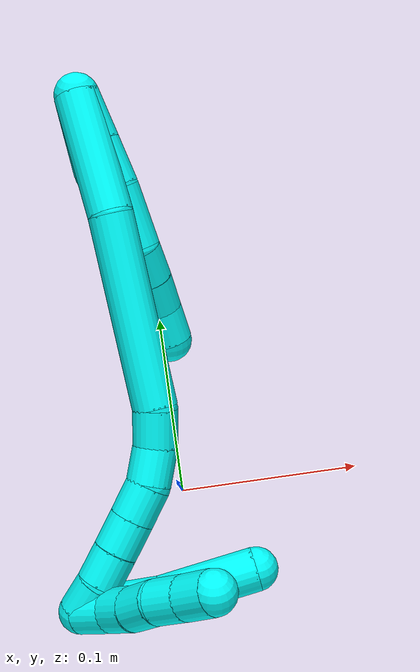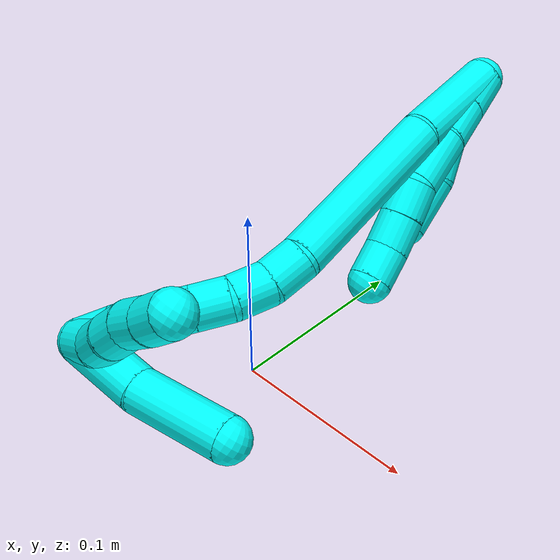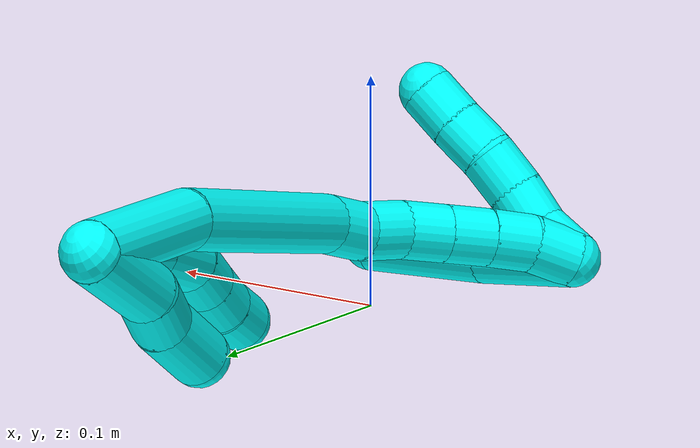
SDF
<sdf version="1.7">
 <world name="default">
  <model name="photoneo_s_sensor">
   <static>1</static>
   <pose>0 0 2 1.57079 1.57079 3.14159</pose>
   <link name="link">
    <inertial><mass>0.1</mass></inertial>
    <sensor name="sensor" type="depth">
     <update_rate>30</update_rate>
     <camera>
      <horizontal_fov>1.22</horizontal_fov>
      <image><width>1920</width><height>1200</height><format>B8G8R8</format></image>
      <clip><near>0.1</near><far>4</far></clip>
      <depth_camera><output>points</output></depth_camera>
     </camera>
     <plugin name="camera_plugin" filename="libgazebo_ros_depth_camera.so">
      <baseline>0.2</baseline>
      <alwaysOn>1</alwaysOn>
      <updateRate>0.0</updateRate>
      <cameraName>camera_ir</cameraName>
      <imageTopicName>/camera/color/image_raw</imageTopicName>
      <cameraInfoTopicName>/camera/color/camera_info</cameraInfoTopicName>
      <depthImageTopicName>/camera/depth/image_raw</depthImageTopicName>
      <depthImageCameraInfoTopicName>/camera/depth/camera_info</depthImageCameraInfoTopicName>
      <pointCloudTopicName>/camera/depth/points</pointCloudTopicName>
      <frameName>fr_optical</frameName>
      <pointCloudCutoff>0.1</pointCloudCutoff>
      <pointCloudCutoffMax>2.0</pointCloudCutoffMax>
      <distortionK1>0</distortionK1>
      <distortionK2>0</distortionK2>
      <distortionK3>0</distortionK3>
      <distortionT1>0</distortionT1>
      <distortionT2>0</distortionT2>
      <CxPrime>0</CxPrime>
      <Cx>0</Cx>
      <Cy>0</Cy>
      <focalLength>0</focalLength>
      <hackBaseline>0</hackBaseline>
     </plugin>
    </sensor>
   </link>
  </model>
  <model name="bin">
   <static>1</static>
   <link name="bottom">
    <collision name="collision-bottom">
     <pose>0 0 -0.01 0 -0 0</pose>
     <geometry><box><size>0.8 0.6 0.02</size></box></geometry>
     <surface>
      <friction><ode><mu>100</mu><mu2>100</mu2></ode></friction>
      <contact><collide_bitmask>65535</collide_bitmask></contact>
     </surface>
    </collision>
   </link>
   <link name="west_wall">
    <collision name="collision-west_wall">
     <pose>-0.41 0 0.1 0 -0 0</pose>
     <geometry><box><size>0.02 0.6 0.2</size></box></geometry>
     <surface>
      <friction><ode><mu>100</mu><mu2>100</mu2></ode></friction>
      <contact><collide_bitmask>65535</collide_bitmask></contact>
     </surface>
    </collision>
   </link>
   <link name="east_wall">
    <collision name="collision-east_wall">
     <pose>0.41 0 0.1 0 -0 0</pose>
     <geometry><box><size>0.02 0.6 0.2</size></box></geometry>
     <surface>
      <friction><ode><mu>100</mu><mu2>100</mu2></ode></friction>
      <contact><collide_bitmask>65535</collide_bitmask></contact>
     </surface>
    </collision>
   </link>
   <link name="south_wall">
    <collision name="collision-south_wall">
     <pose>0 -0.31 0.1 0 -0 0</pose>
     <geometry><box><size>0.8 0.02 0.2</size></box></geometry>
     <surface>
      <friction><ode><mu>100</mu><mu2>100</mu2></ode></friction>
      <contact><collide_bitmask>65535</collide_bitmask></contact>
     </surface>
    </collision>
   </link>
   <link name="north_wall">
    <collision name="collision-north_wall">
     <pose>0 0.31 0.1 0 -0 0</pose>
     <geometry><box><size>0.8 0.02 0.2</size></box></geometry>
     <surface>
      <friction><ode><mu>100</mu><mu2>100</mu2></ode></friction>
      <contact><collide_bitmask>65535</collide_bitmask></contact>
     </surface>
    </collision>
   </link>
  </model>
  <model name="3">
   <static>0</static>
   <link name="3">
    <collision name="collision-cylinder-e_1_2_8">
     <pose>-0.008186 -0.002801 0.011241 0.24418 -0.615165 -0.077916</pose>
     <geometry><cylinder><radius>0.0125</radius><length>0.028371</length></cylinder></geometry>
     <surface>
      <friction><ode><mu>1.16</mu><mu2>1.16</mu2><slip1>0</slip1><slip2>0</slip2></ode></friction>
      <contact><ode><kp>1e+06</kp><kd>1</kd><max_vel>0</max_vel><min_depth>0.001</min_depth></ode></contact>
     </surface>
    </collision>
    <visual name="visual-cylinder-e_1_2_8">
     <pose>-0.008186 -0.002801 0.011241 0.24418 -0.615165 -0.077916</pose>
     <geometry><cylinder><radius>0.0125</radius><length>0.028371</length></cylinder></geometry>
     <material><ambient>0.003922 1 0.996078 1</ambient></material>
    </visual>
    <collision name="collision-cylinder-e_2_8_9">
     <pose>-0.023855 -0.008146 0.032933 0.238861 -0.607802 -0.075233</pose>
     <geometry><cylinder><radius>0.0125</radius><length>0.026205</length></cylinder></geometry>
     <surface>
      <friction><ode><mu>1.16</mu><mu2>1.16</mu2><slip1>0</slip1><slip2>0</slip2></ode></friction>
      <contact><ode><kp>1e+06</kp><kd>1</kd><max_vel>0</max_vel><min_depth>0.001</min_depth></ode></contact>
     </surface>
    </collision>
    <visual name="visual-cylinder-e_2_8_9">
     <pose>-0.023855 -0.008146 0.032933 0.238861 -0.607802 -0.075233</pose>
     <geometry><cylinder><radius>0.0125</radius><length>0.026205</length></cylinder></geometry>
     <material><ambient>0.003922 1 0.996078 1</ambient></material>
    </visual>
    <collision name="collision-cylinder-e_3_9_10">
     <pose>-0.039234 -0.01326 0.05881 0.165039 -0.467604 -0.03939</pose>
     <geometry><cylinder><radius>0.0125</radius><length>0.035038</length></cylinder></geometry>
     <surface>
      <friction><ode><mu>1.16</mu><mu2>1.16</mu2><slip1>0</slip1><slip2>0</slip2></ode></friction>
      <contact><ode><kp>1e+06</kp><kd>1</kd><max_vel>0</max_vel><min_depth>0.001</min_depth></ode></contact>
     </surface>
    </collision>
    <visual name="visual-cylinder-e_3_9_10">
     <pose>-0.039234 -0.01326 0.05881 0.165039 -0.467604 -0.03939</pose>
     <geometry><cylinder><radius>0.0125</radius><length>0.035038</length></cylinder></geometry>
     <material><ambient>0.003922 1 0.996078 1</ambient></material>
    </visual>
    <collision name="collision-cylinder-e_4_10_11">
     <pose>-0.049658 -0.014879 0.084051 -0.096542 -0.250909 0.012185</pose>
     <geometry><cylinder><radius>0.0125</radius><length>0.02036</length></cylinder></geometry>
     <surface>
      <friction><ode><mu>1.16</mu><mu2>1.16</mu2><slip1>0</slip1><slip2>0</slip2></ode></friction>
      <contact><ode><kp>1e+06</kp><kd>1</kd><max_vel>0</max_vel><min_depth>0.001</min_depth></ode></contact>
     </surface>
    </collision>
    <visual name="visual-cylinder-e_4_10_11">
     <pose>-0.049658 -0.014879 0.084051 -0.096542 -0.250909 0.012185</pose>
     <geometry><cylinder><radius>0.0125</radius><length>0.02036</length></cylinder></geometry>
     <material><ambient>0.003922 1 0.996078 1</ambient></material>
    </visual>
    <collision name="collision-cylinder-e_5_11_12">
     <pose>-0.054363 -0.013149 0.103607 -0.079844 -0.219185 0.00879</pose>
     <geometry><cylinder><radius>0.0125</radius><length>0.020024</length></cylinder></geometry>
     <surface>
      <friction><ode><mu>1.16</mu><mu2>1.16</mu2><slip1>0</slip1><slip2>0</slip2></ode></friction>
      <contact><ode><kp>1e+06</kp><kd>1</kd><max_vel>0</max_vel><min_depth>0.001</min_depth></ode></contact>
     </surface>
    </collision>
    <visual name="visual-cylinder-e_5_11_12">
     <pose>-0.054363 -0.013149 0.103607 -0.079844 -0.219185 0.00879</pose>
     <geometry><cylinder><radius>0.0125</radius><length>0.020024</length></cylinder></geometry>
     <material><ambient>0.003922 1 0.996078 1</ambient></material>
    </visual>
    <collision name="collision-cylinder-e_6_12_6">
     <pose>-0.059736 -0.012577 0.122823 0.021923 -0.32534 -0.003598</pose>
     <geometry><cylinder><radius>0.0125</radius><length>0.020002</length></cylinder></geometry>
     <surface>
      <friction><ode><mu>1.16</mu><mu2>1.16</mu2><slip1>0</slip1><slip2>0</slip2></ode></friction>
      <contact><ode><kp>1e+06</kp><kd>1</kd><max_vel>0</max_vel><min_depth>0.001</min_depth></ode></contact>
     </surface>
    </collision>
    <visual name="visual-cylinder-e_6_12_6">
     <pose>-0.059736 -0.012577 0.122823 0.021923 -0.32534 -0.003598</pose>
     <geometry><cylinder><radius>0.0125</radius><length>0.020002</length></cylinder></geometry>
     <material><ambient>0.003922 1 0.996078 1</ambient></material>
    </visual>
    <collision name="collision-cylinder-e_1_2_13">
     <pose>-0.005411 -0.001319 0.021243 0.062006 -0.248972 -0.007761</pose>
     <geometry><cylinder><radius>0.0125</radius><length>0.043921</length></cylinder></geometry>
     <surface>
      <friction><ode><mu>1.16</mu><mu2>1.16</mu2><slip1>0</slip1><slip2>0</slip2></ode></friction>
      <contact><ode><kp>1e+06</kp><kd>1</kd><max_vel>0</max_vel><min_depth>0.001</min_depth></ode></contact>
     </surface>
    </collision>
    <visual name="visual-cylinder-e_1_2_13">
     <pose>-0.005411 -0.001319 0.021243 0.062006 -0.248972 -0.007761</pose>
     <geometry><cylinder><radius>0.0125</radius><length>0.043921</length></cylinder></geometry>
     <material><ambient>0.003922 1 0.996078 1</ambient></material>
    </visual>
    <collision name="collision-cylinder-e_2_13_14">
     <pose>-0.013902 -0.000136 0.053829 -0.217043 -0.259167 0.028393</pose>
     <geometry><cylinder><radius>0.0125</radius><length>0.024035</length></cylinder></geometry>
     <surface>
      <friction><ode><mu>1.16</mu><mu2>1.16</mu2><slip1>0</slip1><slip2>0</slip2></ode></friction>
      <contact><ode><kp>1e+06</kp><kd>1</kd><max_vel>0</max_vel><min_depth>0.001</min_depth></ode></contact>
     </surface>
    </collision>
    <visual name="visual-cylinder-e_2_13_14">
     <pose>-0.013902 -0.000136 0.053829 -0.217043 -0.259167 0.028393</pose>
     <geometry><cylinder><radius>0.0125</radius><length>0.024035</length></cylinder></geometry>
     <material><ambient>0.003922 1 0.996078 1</ambient></material>
    </visual>
    <collision name="collision-cylinder-e_3_14_5">
     <pose>-0.019686 0.001957 0.080959 0.025839 -0.169572 -0.002196</pose>
     <geometry><cylinder><radius>0.0125</radius><length>0.032044</length></cylinder></geometry>
     <surface>
      <friction><ode><mu>1.16</mu><mu2>1.16</mu2><slip1>0</slip1><slip2>0</slip2></ode></friction>
      <contact><ode><kp>1e+06</kp><kd>1</kd><max_vel>0</max_vel><min_depth>0.001</min_depth></ode></contact>
     </surface>
    </collision>
    <visual name="visual-cylinder-e_3_14_5">
     <pose>-0.019686 0.001957 0.080959 0.025839 -0.169572 -0.002196</pose>
     <geometry><cylinder><radius>0.0125</radius><length>0.032044</length></cylinder></geometry>
     <material><ambient>0.003922 1 0.996078 1</ambient></material>
    </visual>
    <collision name="collision-cylinder-e_1_2_15">
     <pose>-0.01998 -0.013783 0.024548 0.511615 -0.617202 -0.166364</pose>
     <geometry><cylinder><radius>0.0125</radius><length>0.069044</length></cylinder></geometry>
     <surface>
      <friction><ode><mu>1.16</mu><mu2>1.16</mu2><slip1>0</slip1><slip2>0</slip2></ode></friction>
      <contact><ode><kp>1e+06</kp><kd>1</kd><max_vel>0</max_vel><min_depth>0.001</min_depth></ode></contact>
     </surface>
    </collision>
    <visual name="visual-cylinder-e_1_2_15">
     <pose>-0.01998 -0.013783 0.024548 0.511615 -0.617202 -0.166364</pose>
     <geometry><cylinder><radius>0.0125</radius><length>0.069044</length></cylinder></geometry>
     <material><ambient>0.003922 1 0.996078 1</ambient></material>
    </visual>
    <collision name="collision-cylinder-e_2_15_16">
     <pose>-0.064085 -0.044802 0.093963 0.366768 -0.465201 -0.087814</pose>
     <geometry><cylinder><radius>0.0125</radius><length>0.107558</length></cylinder></geometry>
     <surface>
      <friction><ode><mu>1.16</mu><mu2>1.16</mu2><slip1>0</slip1><slip2>0</slip2></ode></friction>
      <contact><ode><kp>1e+06</kp><kd>1</kd><max_vel>0</max_vel><min_depth>0.001</min_depth></ode></contact>
     </surface>
    </collision>
    <visual name="visual-cylinder-e_2_15_16">
     <pose>-0.064085 -0.044802 0.093963 0.366768 -0.465201 -0.087814</pose>
     <geometry><cylinder><radius>0.0125</radius><length>0.107558</length></cylinder></geometry>
     <material><ambient>0.003922 1 0.996078 1</ambient></material>
    </visual>
    <collision name="collision-cylinder-e_3_16_17">
     <pose>-0.090564 -0.066223 0.148471 0.409584 -0.220327 -0.045941</pose>
     <geometry><cylinder><radius>0.0125</radius><length>0.021541</length></cylinder></geometry>
     <surface>
      <friction><ode><mu>1.16</mu><mu2>1.16</mu2><slip1>0</slip1><slip2>0</slip2></ode></friction>
      <contact><ode><kp>1e+06</kp><kd>1</kd><max_vel>0</max_vel><min_depth>0.001</min_depth></ode></contact>
     </surface>
    </collision>
    <visual name="visual-cylinder-e_3_16_17">
     <pose>-0.090564 -0.066223 0.148471 0.409584 -0.220327 -0.045941</pose>
     <geometry><cylinder><radius>0.0125</radius><length>0.021541</length></cylinder></geometry>
     <material><ambient>0.003922 1 0.996078 1</ambient></material>
    </visual>
    <collision name="collision-cylinder-e_4_17_18">
     <pose>-0.094797 -0.077022 0.166213 0.684619 -0.177761 -0.063489</pose>
     <geometry><cylinder><radius>0.0125</radius><length>0.021253</length></cylinder></geometry>
     <surface>
      <friction><ode><mu>1.16</mu><mu2>1.16</mu2><slip1>0</slip1><slip2>0</slip2></ode></friction>
      <contact><ode><kp>1e+06</kp><kd>1</kd><max_vel>0</max_vel><min_depth>0.001</min_depth></ode></contact>
     </surface>
    </collision>
    <visual name="visual-cylinder-e_4_17_18">
     <pose>-0.094797 -0.077022 0.166213 0.684619 -0.177761 -0.063489</pose>
     <geometry><cylinder><radius>0.0125</radius><length>0.021253</length></cylinder></geometry>
     <material><ambient>0.003922 1 0.996078 1</ambient></material>
    </visual>
    <collision name="collision-cylinder-e_5_18_19">
     <pose>-0.09564 -0.090539 0.181734 0.749433 0.101877 0.040098</pose>
     <geometry><cylinder><radius>0.0125</radius><length>0.020372</length></cylinder></geometry>
     <surface>
      <friction><ode><mu>1.16</mu><mu2>1.16</mu2><slip1>0</slip1><slip2>0</slip2></ode></friction>
      <contact><ode><kp>1e+06</kp><kd>1</kd><max_vel>0</max_vel><min_depth>0.001</min_depth></ode></contact>
     </surface>
    </collision>
    <visual name="visual-cylinder-e_5_18_19">
     <pose>-0.09564 -0.090539 0.181734 0.749433 0.101877 0.040098</pose>
     <geometry><cylinder><radius>0.0125</radius><length>0.020372</length></cylinder></geometry>
     <material><ambient>0.003922 1 0.996078 1</ambient></material>
    </visual>
    <collision name="collision-cylinder-e_6_19_20">
     <pose>-0.093482 -0.104258 0.196426 0.752892 0.112112 0.044357</pose>
     <geometry><cylinder><radius>0.0125</radius><length>0.020063</length></cylinder></geometry>
     <surface>
      <friction><ode><mu>1.16</mu><mu2>1.16</mu2><slip1>0</slip1><slip2>0</slip2></ode></friction>
      <contact><ode><kp>1e+06</kp><kd>1</kd><max_vel>0</max_vel><min_depth>0.001</min_depth></ode></contact>
     </surface>
    </collision>
    <visual name="visual-cylinder-e_6_19_20">
     <pose>-0.093482 -0.104258 0.196426 0.752892 0.112112 0.044357</pose>
     <geometry><cylinder><radius>0.0125</radius><length>0.020063</length></cylinder></geometry>
     <material><ambient>0.003922 1 0.996078 1</ambient></material>
    </visual>
    <collision name="collision-cylinder-e_7_20_21">
     <pose>-0.090984 -0.11767 0.211122 0.726539 0.137657 0.0524</pose>
     <geometry><cylinder><radius>0.0125</radius><length>0.020047</length></cylinder></geometry>
     <surface>
      <friction><ode><mu>1.16</mu><mu2>1.16</mu2><slip1>0</slip1><slip2>0</slip2></ode></friction>
      <contact><ode><kp>1e+06</kp><kd>1</kd><max_vel>0</max_vel><min_depth>0.001</min_depth></ode></contact>
     </surface>
    </collision>
    <visual name="visual-cylinder-e_7_20_21">
     <pose>-0.090984 -0.11767 0.211122 0.726539 0.137657 0.0524</pose>
     <geometry><cylinder><radius>0.0125</radius><length>0.020047</length></cylinder></geometry>
     <material><ambient>0.003922 1 0.996078 1</ambient></material>
    </visual>
    <collision name="collision-cylinder-e_8_21_1">
     <pose>-0.086613 -0.129548 0.226565 0.582395 0.302299 0.091237</pose>
     <geometry><cylinder><radius>0.0125</radius><length>0.020123</length></cylinder></geometry>
     <surface>
      <friction><ode><mu>1.16</mu><mu2>1.16</mu2><slip1>0</slip1><slip2>0</slip2></ode></friction>
      <contact><ode><kp>1e+06</kp><kd>1</kd><max_vel>0</max_vel><min_depth>0.001</min_depth></ode></contact>
     </surface>
    </collision>
    <visual name="visual-cylinder-e_8_21_1">
     <pose>-0.086613 -0.129548 0.226565 0.582395 0.302299 0.091237</pose>
     <geometry><cylinder><radius>0.0125</radius><length>0.020123</length></cylinder></geometry>
     <material><ambient>0.003922 1 0.996078 1</ambient></material>
    </visual>
    <collision name="collision-cylinder-e_1_1_22">
     <pose>-0.092692 -0.132558 0.231054 -2.56987 -1.13717 2.27936</pose>
     <geometry><cylinder><radius>0.0125</radius><length>0.02</length></cylinder></geometry>
     <surface>
      <friction><ode><mu>1.16</mu><mu2>1.16</mu2><slip1>0</slip1><slip2>0</slip2></ode></friction>
      <contact><ode><kp>1e+06</kp><kd>1</kd><max_vel>0</max_vel><min_depth>0.001</min_depth></ode></contact>
     </surface>
    </collision>
    <visual name="visual-cylinder-e_1_1_22">
     <pose>-0.092692 -0.132558 0.231054 -2.56987 -1.13717 2.27936</pose>
     <geometry><cylinder><radius>0.0125</radius><length>0.02</length></cylinder></geometry>
     <material><ambient>0.003922 1 0.996078 1</ambient></material>
    </visual>
    <collision name="collision-cylinder-e_2_22_23">
     <pose>-0.110131 -0.130532 0.222045 3.09641 -0.990691 -3.058</pose>
     <geometry><cylinder><radius>0.0125</radius><length>0.02</length></cylinder></geometry>
     <surface>
      <friction><ode><mu>1.16</mu><mu2>1.16</mu2><slip1>0</slip1><slip2>0</slip2></ode></friction>
      <contact><ode><kp>1e+06</kp><kd>1</kd><max_vel>0</max_vel><min_depth>0.001</min_depth></ode></contact>
     </surface>
    </collision>
    <visual name="visual-cylinder-e_2_22_23">
     <pose>-0.110131 -0.130532 0.222045 3.09641 -0.990691 -3.058</pose>
     <geometry><cylinder><radius>0.0125</radius><length>0.02</length></cylinder></geometry>
     <material><ambient>0.003922 1 0.996078 1</ambient></material>
    </visual>
    <collision name="collision-cylinder-e_3_23_24">
     <pose>-0.126141 -0.1302 0.21015 -3.05151 -0.870411 2.94831</pose>
     <geometry><cylinder><radius>0.0125</radius><length>0.02</length></cylinder></geometry>
     <surface>
      <friction><ode><mu>1.16</mu><mu2>1.16</mu2><slip1>0</slip1><slip2>0</slip2></ode></friction>
      <contact><ode><kp>1e+06</kp><kd>1</kd><max_vel>0</max_vel><min_depth>0.001</min_depth></ode></contact>
     </surface>
    </collision>
    <visual name="visual-cylinder-e_3_23_24">
     <pose>-0.126141 -0.1302 0.21015 -3.05151 -0.870411 2.94831</pose>
     <geometry><cylinder><radius>0.0125</radius><length>0.02</length></cylinder></geometry>
     <material><ambient>0.003922 1 0.996078 1</ambient></material>
    </visual>
    <collision name="collision-cylinder-e_4_24_25">
     <pose>-0.142321 -0.127905 0.19881 -2.80614 -1.02264 2.55545</pose>
     <geometry><cylinder><radius>0.0125</radius><length>0.02</length></cylinder></geometry>
     <surface>
      <friction><ode><mu>1.16</mu><mu2>1.16</mu2><slip1>0</slip1><slip2>0</slip2></ode></friction>
      <contact><ode><kp>1e+06</kp><kd>1</kd><max_vel>0</max_vel><min_depth>0.001</min_depth></ode></contact>
     </surface>
    </collision>
    <visual name="visual-cylinder-e_4_24_25">
     <pose>-0.142321 -0.127905 0.19881 -2.80614 -1.02264 2.55545</pose>
     <geometry><cylinder><radius>0.0125</radius><length>0.02</length></cylinder></geometry>
     <material><ambient>0.003922 1 0.996078 1</ambient></material>
    </visual>
    <collision name="collision-cylinder-e_5_25_4">
     <pose>-0.159149 -0.124938 0.188443 -2.91575 -0.977721 2.7215</pose>
     <geometry><cylinder><radius>0.0125</radius><length>0.02</length></cylinder></geometry>
     <surface>
      <friction><ode><mu>1.16</mu><mu2>1.16</mu2><slip1>0</slip1><slip2>0</slip2></ode></friction>
      <contact><ode><kp>1e+06</kp><kd>1</kd><max_vel>0</max_vel><min_depth>0.001</min_depth></ode></contact>
     </surface>
    </collision>
    <visual name="visual-cylinder-e_5_25_4">
     <pose>-0.159149 -0.124938 0.188443 -2.91575 -0.977721 2.7215</pose>
     <geometry><cylinder><radius>0.0125</radius><length>0.02</length></cylinder></geometry>
     <material><ambient>0.003922 1 0.996078 1</ambient></material>
    </visual>
    <collision name="collision-cylinder-e_1_1_26">
     <pose>-0.099563 -0.11901 0.234473 -1.57799 -0.789289 0.794411</pose>
     <geometry><cylinder><radius>0.0125</radius><length>0.044927</length></cylinder></geometry>
     <surface>
      <friction><ode><mu>1.16</mu><mu2>1.16</mu2><slip1>0</slip1><slip2>0</slip2></ode></friction>
      <contact><ode><kp>1e+06</kp><kd>1</kd><max_vel>0</max_vel><min_depth>0.001</min_depth></ode></contact>
     </surface>
    </collision>
    <visual name="visual-cylinder-e_1_1_26">
     <pose>-0.099563 -0.11901 0.234473 -1.57799 -0.789289 0.794411</pose>
     <geometry><cylinder><radius>0.0125</radius><length>0.044927</length></cylinder></geometry>
     <material><ambient>0.003922 1 0.996078 1</ambient></material>
    </visual>
    <collision name="collision-cylinder-e_2_26_3">
     <pose>-0.134245 -0.08355 0.229716 -1.80298 -0.748312 0.921398</pose>
     <geometry><cylinder><radius>0.0125</radius><length>0.055073</length></cylinder></geometry>
     <surface>
      <friction><ode><mu>1.16</mu><mu2>1.16</mu2><slip1>0</slip1><slip2>0</slip2></ode></friction>
      <contact><ode><kp>1e+06</kp><kd>1</kd><max_vel>0</max_vel><min_depth>0.001</min_depth></ode></contact>
     </surface>
    </collision>
    <visual name="visual-cylinder-e_2_26_3">
     <pose>-0.134245 -0.08355 0.229716 -1.80298 -0.748312 0.921398</pose>
     <geometry><cylinder><radius>0.0125</radius><length>0.055073</length></cylinder></geometry>
     <material><ambient>0.003922 1 0.996078 1</ambient></material>
    </visual>
    <collision name="collision-sphere-3">
     <pose>-0.152981 -0.063911 0.225072 0 -0 0</pose>
     <geometry><sphere><radius>0.0125</radius></sphere></geometry>
     <surface>
      <friction><ode><mu>1.16</mu><mu2>1.16</mu2><slip1>0</slip1><slip2>0</slip2></ode></friction>
      <contact><ode><kp>1e+06</kp><kd>1</kd><max_vel>0</max_vel><min_depth>0.001</min_depth></ode></contact>
     </surface>
    </collision>
    <visual name="visual-sphere-3">
     <pose>-0.152981 -0.063911 0.225072 0 -0 0</pose>
     <geometry><sphere><radius>0.0125</radius></sphere></geometry>
     <material><ambient>0.003922 1 0.996078 1</ambient></material>
    </visual>
    <collision name="collision-sphere-26">
     <pose>-0.115509 -0.103188 0.234359 0 -0 0</pose>
     <geometry><sphere><radius>0.0125</radius></sphere></geometry>
     <surface>
      <friction><ode><mu>1.16</mu><mu2>1.16</mu2><slip1>0</slip1><slip2>0</slip2></ode></friction>
      <contact><ode><kp>1e+06</kp><kd>1</kd><max_vel>0</max_vel><min_depth>0.001</min_depth></ode></contact>
     </surface>
    </collision>
    <visual name="visual-sphere-26">
     <pose>-0.115509 -0.103188 0.234359 0 -0 0</pose>
     <geometry><sphere><radius>0.0125</radius></sphere></geometry>
     <material><ambient>0.003922 1 0.996078 1</ambient></material>
    </visual>
    <collision name="collision-sphere-4">
     <pose>-0.167441 -0.123686 0.182995 0 -0 0</pose>
     <geometry><sphere><radius>0.0125</radius></sphere></geometry>
     <surface>
      <friction><ode><mu>1.16</mu><mu2>1.16</mu2><slip1>0</slip1><slip2>0</slip2></ode></friction>
      <contact><ode><kp>1e+06</kp><kd>1</kd><max_vel>0</max_vel><min_depth>0.001</min_depth></ode></contact>
     </surface>
    </collision>
    <visual name="visual-sphere-4">
     <pose>-0.167441 -0.123686 0.182995 0 -0 0</pose>
     <geometry><sphere><radius>0.0125</radius></sphere></geometry>
     <material><ambient>0.003922 1 0.996078 1</ambient></material>
    </visual>
    <collision name="collision-sphere-25">
     <pose>-0.150856 -0.126189 0.19389 0 -0 0</pose>
     <geometry><sphere><radius>0.0125</radius></sphere></geometry>
     <surface>
      <friction><ode><mu>1.16</mu><mu2>1.16</mu2><slip1>0</slip1><slip2>0</slip2></ode></friction>
      <contact><ode><kp>1e+06</kp><kd>1</kd><max_vel>0</max_vel><min_depth>0.001</min_depth></ode></contact>
     </surface>
    </collision>
    <visual name="visual-sphere-25">
     <pose>-0.150856 -0.126189 0.19389 0 -0 0</pose>
     <geometry><sphere><radius>0.0125</radius></sphere></geometry>
     <material><ambient>0.003922 1 0.996078 1</ambient></material>
    </visual>
    <collision name="collision-sphere-24">
     <pose>-0.133786 -0.12962 0.203731 0 -0 0</pose>
     <geometry><sphere><radius>0.0125</radius></sphere></geometry>
     <surface>
      <friction><ode><mu>1.16</mu><mu2>1.16</mu2><slip1>0</slip1><slip2>0</slip2></ode></friction>
      <contact><ode><kp>1e+06</kp><kd>1</kd><max_vel>0</max_vel><min_depth>0.001</min_depth></ode></contact>
     </surface>
    </collision>
    <visual name="visual-sphere-24">
     <pose>-0.133786 -0.12962 0.203731 0 -0 0</pose>
     <geometry><sphere><radius>0.0125</radius></sphere></geometry>
     <material><ambient>0.003922 1 0.996078 1</ambient></material>
    </visual>
    <collision name="collision-sphere-23">
     <pose>-0.118495 -0.13078 0.216569 0 -0 0</pose>
     <geometry><sphere><radius>0.0125</radius></sphere></geometry>
     <surface>
      <friction><ode><mu>1.16</mu><mu2>1.16</mu2><slip1>0</slip1><slip2>0</slip2></ode></friction>
      <contact><ode><kp>1e+06</kp><kd>1</kd><max_vel>0</max_vel><min_depth>0.001</min_depth></ode></contact>
     </surface>
    </collision>
    <visual name="visual-sphere-23">
     <pose>-0.118495 -0.13078 0.216569 0 -0 0</pose>
     <geometry><sphere><radius>0.0125</radius></sphere></geometry>
     <material><ambient>0.003922 1 0.996078 1</ambient></material>
    </visual>
    <collision name="collision-sphere-22">
     <pose>-0.101766 -0.130285 0.22752 0 -0 0</pose>
     <geometry><sphere><radius>0.0125</radius></sphere></geometry>
     <surface>
      <friction><ode><mu>1.16</mu><mu2>1.16</mu2><slip1>0</slip1><slip2>0</slip2></ode></friction>
      <contact><ode><kp>1e+06</kp><kd>1</kd><max_vel>0</max_vel><min_depth>0.001</min_depth></ode></contact>
     </surface>
    </collision>
    <visual name="visual-sphere-22">
     <pose>-0.101766 -0.130285 0.22752 0 -0 0</pose>
     <geometry><sphere><radius>0.0125</radius></sphere></geometry>
     <material><ambient>0.003922 1 0.996078 1</ambient></material>
    </visual>
    <collision name="collision-sphere-1">
     <pose>-0.083618 -0.134832 0.234587 0 -0 0</pose>
     <geometry><sphere><radius>0.0125</radius></sphere></geometry>
     <surface>
      <friction><ode><mu>1.16</mu><mu2>1.16</mu2><slip1>0</slip1><slip2>0</slip2></ode></friction>
      <contact><ode><kp>1e+06</kp><kd>1</kd><max_vel>0</max_vel><min_depth>0.001</min_depth></ode></contact>
     </surface>
    </collision>
    <visual name="visual-sphere-1">
     <pose>-0.083618 -0.134832 0.234587 0 -0 0</pose>
     <geometry><sphere><radius>0.0125</radius></sphere></geometry>
     <material><ambient>0.003922 1 0.996078 1</ambient></material>
    </visual>
    <collision name="collision-sphere-21">
     <pose>-0.089609 -0.124265 0.218543 0 -0 0</pose>
     <geometry><sphere><radius>0.0125</radius></sphere></geometry>
     <surface>
      <friction><ode><mu>1.16</mu><mu2>1.16</mu2><slip1>0</slip1><slip2>0</slip2></ode></friction>
      <contact><ode><kp>1e+06</kp><kd>1</kd><max_vel>0</max_vel><min_depth>0.001</min_depth></ode></contact>
     </surface>
    </collision>
    <visual name="visual-sphere-21">
     <pose>-0.089609 -0.124265 0.218543 0 -0 0</pose>
     <geometry><sphere><radius>0.0125</radius></sphere></geometry>
     <material><ambient>0.003922 1 0.996078 1</ambient></material>
    </visual>
    <collision name="collision-sphere-12">
     <pose>-0.05654 -0.01237 0.113349 0 -0 0</pose>
     <geometry><sphere><radius>0.0125</radius></sphere></geometry>
     <surface>
      <friction><ode><mu>1.16</mu><mu2>1.16</mu2><slip1>0</slip1><slip2>0</slip2></ode></friction>
      <contact><ode><kp>1e+06</kp><kd>1</kd><max_vel>0</max_vel><min_depth>0.001</min_depth></ode></contact>
     </surface>
    </collision>
    <visual name="visual-sphere-12">
     <pose>-0.05654 -0.01237 0.113349 0 -0 0</pose>
     <geometry><sphere><radius>0.0125</radius></sphere></geometry>
     <material><ambient>0.003922 1 0.996078 1</ambient></material>
    </visual>
    <collision name="collision-sphere-11">
     <pose>-0.052186 -0.013929 0.093866 0 -0 0</pose>
     <geometry><sphere><radius>0.0125</radius></sphere></geometry>
     <surface>
      <friction><ode><mu>1.16</mu><mu2>1.16</mu2><slip1>0</slip1><slip2>0</slip2></ode></friction>
      <contact><ode><kp>1e+06</kp><kd>1</kd><max_vel>0</max_vel><min_depth>0.001</min_depth></ode></contact>
     </surface>
    </collision>
    <visual name="visual-sphere-11">
     <pose>-0.052186 -0.013929 0.093866 0 -0 0</pose>
     <geometry><sphere><radius>0.0125</radius></sphere></geometry>
     <material><ambient>0.003922 1 0.996078 1</ambient></material>
    </visual>
    <collision name="collision-sphere-10">
     <pose>-0.047131 -0.01583 0.074236 0 -0 0</pose>
     <geometry><sphere><radius>0.0125</radius></sphere></geometry>
     <surface>
      <friction><ode><mu>1.16</mu><mu2>1.16</mu2><slip1>0</slip1><slip2>0</slip2></ode></friction>
      <contact><ode><kp>1e+06</kp><kd>1</kd><max_vel>0</max_vel><min_depth>0.001</min_depth></ode></contact>
     </surface>
    </collision>
    <visual name="visual-sphere-10">
     <pose>-0.047131 -0.01583 0.074236 0 -0 0</pose>
     <geometry><sphere><radius>0.0125</radius></sphere></geometry>
     <material><ambient>0.003922 1 0.996078 1</ambient></material>
    </visual>
    <collision name="collision-sphere-9">
     <pose>-0.031337 -0.010691 0.043384 0 -0 0</pose>
     <geometry><sphere><radius>0.0125</radius></sphere></geometry>
     <surface>
      <friction><ode><mu>1.16</mu><mu2>1.16</mu2><slip1>0</slip1><slip2>0</slip2></ode></friction>
      <contact><ode><kp>1e+06</kp><kd>1</kd><max_vel>0</max_vel><min_depth>0.001</min_depth></ode></contact>
     </surface>
    </collision>
    <visual name="visual-sphere-9">
     <pose>-0.031337 -0.010691 0.043384 0 -0 0</pose>
     <geometry><sphere><radius>0.0125</radius></sphere></geometry>
     <material><ambient>0.003922 1 0.996078 1</ambient></material>
    </visual>
    <collision name="collision-sphere-2">
     <geometry><sphere><radius>0.0125</radius></sphere></geometry>
     <surface>
      <friction><ode><mu>1.16</mu><mu2>1.16</mu2><slip1>0</slip1><slip2>0</slip2></ode></friction>
      <contact><ode><kp>1e+06</kp><kd>1</kd><max_vel>0</max_vel><min_depth>0.001</min_depth></ode></contact>
     </surface>
    </collision>
    <visual name="visual-sphere-2">
     <geometry><sphere><radius>0.0125</radius></sphere></geometry>
     <material><ambient>0.003922 1 0.996078 1</ambient></material>
    </visual>
    <collision name="collision-sphere-19">
     <pose>-0.094604 -0.097442 0.189152 0 -0 0</pose>
     <geometry><sphere><radius>0.0125</radius></sphere></geometry>
     <surface>
      <friction><ode><mu>1.16</mu><mu2>1.16</mu2><slip1>0</slip1><slip2>0</slip2></ode></friction>
      <contact><ode><kp>1e+06</kp><kd>1</kd><max_vel>0</max_vel><min_depth>0.001</min_depth></ode></contact>
     </surface>
    </collision>
    <visual name="visual-sphere-19">
     <pose>-0.094604 -0.097442 0.189152 0 -0 0</pose>
     <geometry><sphere><radius>0.0125</radius></sphere></geometry>
     <material><ambient>0.003922 1 0.996078 1</ambient></material>
    </visual>
    <collision name="collision-sphere-8">
     <pose>-0.016372 -0.005602 0.022482 0 -0 0</pose>
     <geometry><sphere><radius>0.0125</radius></sphere></geometry>
     <surface>
      <friction><ode><mu>1.16</mu><mu2>1.16</mu2><slip1>0</slip1><slip2>0</slip2></ode></friction>
      <contact><ode><kp>1e+06</kp><kd>1</kd><max_vel>0</max_vel><min_depth>0.001</min_depth></ode></contact>
     </surface>
    </collision>
    <visual name="visual-sphere-8">
     <pose>-0.016372 -0.005602 0.022482 0 -0 0</pose>
     <geometry><sphere><radius>0.0125</radius></sphere></geometry>
     <material><ambient>0.003922 1 0.996078 1</ambient></material>
    </visual>
    <collision name="collision-sphere-6">
     <pose>-0.062933 -0.012785 0.132297 0 -0 0</pose>
     <geometry><sphere><radius>0.0125</radius></sphere></geometry>
     <surface>
      <friction><ode><mu>1.16</mu><mu2>1.16</mu2><slip1>0</slip1><slip2>0</slip2></ode></friction>
      <contact><ode><kp>1e+06</kp><kd>1</kd><max_vel>0</max_vel><min_depth>0.001</min_depth></ode></contact>
     </surface>
    </collision>
    <visual name="visual-sphere-6">
     <pose>-0.062933 -0.012785 0.132297 0 -0 0</pose>
     <geometry><sphere><radius>0.0125</radius></sphere></geometry>
     <material><ambient>0.003922 1 0.996078 1</ambient></material>
    </visual>
    <collision name="collision-sphere-13">
     <pose>-0.010823 -0.002638 0.042485 0 -0 0</pose>
     <geometry><sphere><radius>0.0125</radius></sphere></geometry>
     <surface>
      <friction><ode><mu>1.16</mu><mu2>1.16</mu2><slip1>0</slip1><slip2>0</slip2></ode></friction>
      <contact><ode><kp>1e+06</kp><kd>1</kd><max_vel>0</max_vel><min_depth>0.001</min_depth></ode></contact>
     </surface>
    </collision>
    <visual name="visual-sphere-13">
     <pose>-0.010823 -0.002638 0.042485 0 -0 0</pose>
     <geometry><sphere><radius>0.0125</radius></sphere></geometry>
     <material><ambient>0.003922 1 0.996078 1</ambient></material>
    </visual>
    <collision name="collision-sphere-14">
     <pose>-0.016982 0.002365 0.065172 0 -0 0</pose>
     <geometry><sphere><radius>0.0125</radius></sphere></geometry>
     <surface>
      <friction><ode><mu>1.16</mu><mu2>1.16</mu2><slip1>0</slip1><slip2>0</slip2></ode></friction>
      <contact><ode><kp>1e+06</kp><kd>1</kd><max_vel>0</max_vel><min_depth>0.001</min_depth></ode></contact>
     </surface>
    </collision>
    <visual name="visual-sphere-14">
     <pose>-0.016982 0.002365 0.065172 0 -0 0</pose>
     <geometry><sphere><radius>0.0125</radius></sphere></geometry>
     <material><ambient>0.003922 1 0.996078 1</ambient></material>
    </visual>
    <collision name="collision-sphere-5">
     <pose>-0.02239 0.001549 0.096746 0 -0 0</pose>
     <geometry><sphere><radius>0.0125</radius></sphere></geometry>
     <surface>
      <friction><ode><mu>1.16</mu><mu2>1.16</mu2><slip1>0</slip1><slip2>0</slip2></ode></friction>
      <contact><ode><kp>1e+06</kp><kd>1</kd><max_vel>0</max_vel><min_depth>0.001</min_depth></ode></contact>
     </surface>
    </collision>
    <visual name="visual-sphere-5">
     <pose>-0.02239 0.001549 0.096746 0 -0 0</pose>
     <geometry><sphere><radius>0.0125</radius></sphere></geometry>
     <material><ambient>0.003922 1 0.996078 1</ambient></material>
    </visual>
    <collision name="collision-sphere-15">
     <pose>-0.039959 -0.027566 0.049096 0 -0 0</pose>
     <geometry><sphere><radius>0.0125</radius></sphere></geometry>
     <surface>
      <friction><ode><mu>1.16</mu><mu2>1.16</mu2><slip1>0</slip1><slip2>0</slip2></ode></friction>
      <contact><ode><kp>1e+06</kp><kd>1</kd><max_vel>0</max_vel><min_depth>0.001</min_depth></ode></contact>
     </surface>
    </collision>
    <visual name="visual-sphere-15">
     <pose>-0.039959 -0.027566 0.049096 0 -0 0</pose>
     <geometry><sphere><radius>0.0125</radius></sphere></geometry>
     <material><ambient>0.003922 1 0.996078 1</ambient></material>
    </visual>
    <collision name="collision-sphere-16">
     <pose>-0.08821 -0.062038 0.13883 0 -0 0</pose>
     <geometry><sphere><radius>0.0125</radius></sphere></geometry>
     <surface>
      <friction><ode><mu>1.16</mu><mu2>1.16</mu2><slip1>0</slip1><slip2>0</slip2></ode></friction>
      <contact><ode><kp>1e+06</kp><kd>1</kd><max_vel>0</max_vel><min_depth>0.001</min_depth></ode></contact>
     </surface>
    </collision>
    <visual name="visual-sphere-16">
     <pose>-0.08821 -0.062038 0.13883 0 -0 0</pose>
     <geometry><sphere><radius>0.0125</radius></sphere></geometry>
     <material><ambient>0.003922 1 0.996078 1</ambient></material>
    </visual>
    <collision name="collision-sphere-17">
     <pose>-0.092918 -0.070408 0.158111 0 -0 0</pose>
     <geometry><sphere><radius>0.0125</radius></sphere></geometry>
     <surface>
      <friction><ode><mu>1.16</mu><mu2>1.16</mu2><slip1>0</slip1><slip2>0</slip2></ode></friction>
      <contact><ode><kp>1e+06</kp><kd>1</kd><max_vel>0</max_vel><min_depth>0.001</min_depth></ode></contact>
     </surface>
    </collision>
    <visual name="visual-sphere-17">
     <pose>-0.092918 -0.070408 0.158111 0 -0 0</pose>
     <geometry><sphere><radius>0.0125</radius></sphere></geometry>
     <material><ambient>0.003922 1 0.996078 1</ambient></material>
    </visual>
    <collision name="collision-sphere-18">
     <pose>-0.096676 -0.083636 0.174315 0 -0 0</pose>
     <geometry><sphere><radius>0.0125</radius></sphere></geometry>
     <surface>
      <friction><ode><mu>1.16</mu><mu2>1.16</mu2><slip1>0</slip1><slip2>0</slip2></ode></friction>
      <contact><ode><kp>1e+06</kp><kd>1</kd><max_vel>0</max_vel><min_depth>0.001</min_depth></ode></contact>
     </surface>
    </collision>
    <visual name="visual-sphere-18">
     <pose>-0.096676 -0.083636 0.174315 0 -0 0</pose>
     <geometry><sphere><radius>0.0125</radius></sphere></geometry>
     <material><ambient>0.003922 1 0.996078 1</ambient></material>
    </visual>
    <collision name="collision-sphere-20">
     <pose>-0.092359 -0.111074 0.2037 0 -0 0</pose>
     <geometry><sphere><radius>0.0125</radius></sphere></geometry>
     <surface>
      <friction><ode><mu>1.16</mu><mu2>1.16</mu2><slip1>0</slip1><slip2>0</slip2></ode></friction>
      <contact><ode><kp>1e+06</kp><kd>1</kd><max_vel>0</max_vel><min_depth>0.001</min_depth></ode></contact>
     </surface>
    </collision>
    <visual name="visual-sphere-20">
     <pose>-0.092359 -0.111074 0.2037 0 -0 0</pose>
     <geometry><sphere><radius>0.0125</radius></sphere></geometry>
     <material><ambient>0.003922 1 0.996078 1</ambient></material>
    </visual>
    <inertial>
     <pose>-0.067777 -0.056241 0.124624 0 -0 0</pose>
     <mass>0.75</mass>
     <inertia>
      <ixx>0.000143</ixx>
      <ixy>0</ixy>
      <ixz>0</ixz>
      <iyy>0.000181</iyy>
      <iyz>0</iyz>
      <izz>0.000165</izz>
     </inertia>
    </inertial>
   </link>
   <pose>-0.026796 0.216637 0.07099 -2.45664 0.429829 2.57651</pose>
  </model>
 </world>
</sdf>
